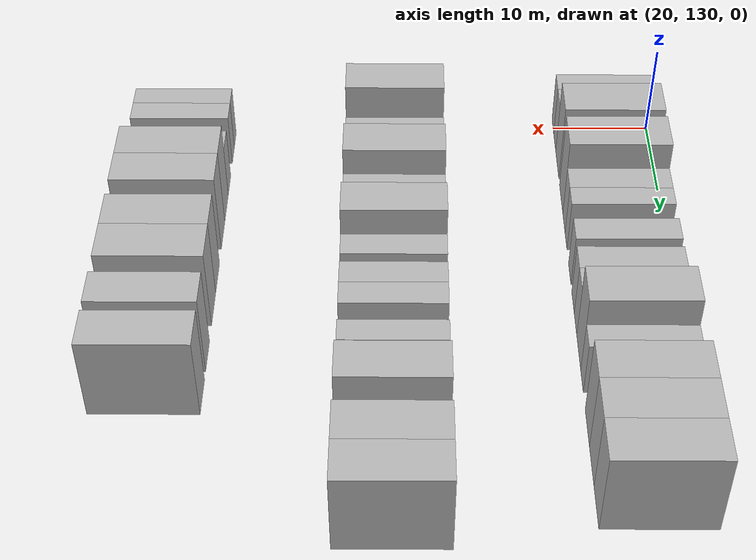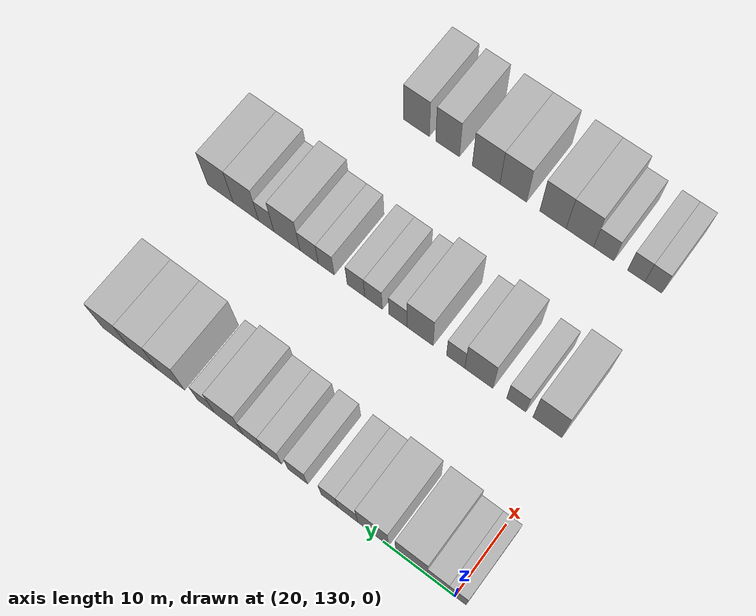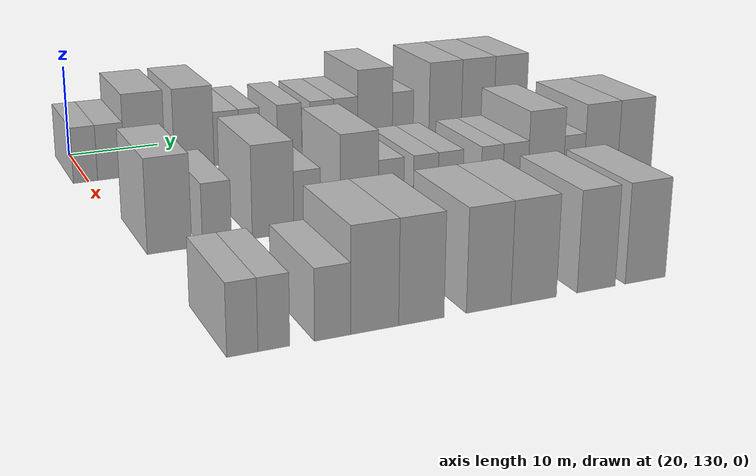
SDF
<sdf version="1.6">
 <world name="default">
  <model name="building_127">
   <static>1</static>
   <pose>25.0000 129.6932 0 0.000000 0.000000 0.000000</pose>
   <link name="link">
    <pose>0 0 3.00 0 0 0</pose>
    <collision name="collision"><geometry><box><size>10.0000 2.5258 6.0000</size></box></geometry></collision>
    <visual name="visual">
     <cast_shadows>0</cast_shadows>
     <geometry><box><size>10.0000 2.5258 6.0000</size></box></geometry>
     <material>
      <script>
       <uri>model://HANNAS_wall/materials/scripts</uri>
       <uri>model://HANNAS_wall/materials/textures</uri>
       <name>vrc/HANNAS_wall</name>
      </script>
     </material>
    </visual>
   </link>
  </model>
  <model name="building_128">
   <static>1</static>
   <pose>25.0000 132.4040 0 0.000000 0.000000 0.000000</pose>
   <link name="link">
    <pose>0 0 3.00 0 0 0</pose>
    <collision name="collision"><geometry><box><size>10.0000 2.8959 6.0000</size></box></geometry></collision>
    <visual name="visual">
     <cast_shadows>0</cast_shadows>
     <geometry><box><size>10.0000 2.8959 6.0000</size></box></geometry>
     <material>
      <script>
       <uri>model://HANNAS_wall/materials/scripts</uri>
       <uri>model://HANNAS_wall/materials/textures</uri>
       <name>vrc/HANNAS_wall</name>
      </script>
     </material>
    </visual>
   </link>
  </model>
  <model name="building_129">
   <static>1</static>
   <pose>25.0000 136.0474 0 0.000000 0.000000 0.000000</pose>
   <link name="link">
    <pose>0 0 4.50 0 0 0</pose>
    <collision name="collision"><geometry><box><size>10.0000 4.3910 9.0000</size></box></geometry></collision>
    <visual name="visual">
     <cast_shadows>0</cast_shadows>
     <geometry><box><size>10.0000 4.3910 9.0000</size></box></geometry>
     <material>
      <script>
       <uri>model://HANNAS_wall/materials/scripts</uri>
       <uri>model://HANNAS_wall/materials/textures</uri>
       <name>vrc/HANNAS_wall</name>
      </script>
     </material>
    </visual>
   </link>
  </model>
  <model name="building_130">
   <static>1</static>
   <pose>25.0000 141.4439 0 0.000000 0.000000 0.000000</pose>
   <link name="link">
    <pose>0 0 4.50 0 0 0</pose>
    <collision name="collision"><geometry><box><size>10.0000 4.4021 9.0000</size></box></geometry></collision>
    <visual name="visual">
     <cast_shadows>0</cast_shadows>
     <geometry><box><size>10.0000 4.4021 9.0000</size></box></geometry>
     <material>
      <script>
       <uri>model://HANNAS_wall/materials/scripts</uri>
       <uri>model://HANNAS_wall/materials/textures</uri>
       <name>vrc/HANNAS_wall</name>
      </script>
     </material>
    </visual>
   </link>
  </model>
  <model name="building_131">
   <static>1</static>
   <pose>25.0000 145.0742 0 0.000000 0.000000 0.000000</pose>
   <link name="link">
    <pose>0 0 3.00 0 0 0</pose>
    <collision name="collision"><geometry><box><size>10.0000 2.8584 6.0000</size></box></geometry></collision>
    <visual name="visual">
     <cast_shadows>0</cast_shadows>
     <geometry><box><size>10.0000 2.8584 6.0000</size></box></geometry>
     <material>
      <script>
       <uri>model://HANNAS_wall/materials/scripts</uri>
       <uri>model://HANNAS_wall/materials/textures</uri>
       <name>vrc/HANNAS_wall</name>
      </script>
     </material>
    </visual>
   </link>
  </model>
  <model name="building_132">
   <static>1</static>
   <pose>25.0000 147.7127 0 0.000000 0.000000 0.000000</pose>
   <link name="link">
    <pose>0 0 3.00 0 0 0</pose>
    <collision name="collision"><geometry><box><size>10.0000 2.4186 6.0000</size></box></geometry></collision>
    <visual name="visual">
     <cast_shadows>0</cast_shadows>
     <geometry><box><size>10.0000 2.4186 6.0000</size></box></geometry>
     <material>
      <script>
       <uri>model://HANNAS_wall/materials/scripts</uri>
       <uri>model://HANNAS_wall/materials/textures</uri>
       <name>vrc/HANNAS_wall</name>
      </script>
     </material>
    </visual>
   </link>
  </model>
  <model name="building_133">
   <static>1</static>
   <pose>25.0000 152.3538 0 0.000000 0.000000 0.000000</pose>
   <link name="link">
    <pose>0 0 3.00 0 0 0</pose>
    <collision name="collision"><geometry><box><size>10.0000 2.8638 6.0000</size></box></geometry></collision>
    <visual name="visual">
     <cast_shadows>0</cast_shadows>
     <geometry><box><size>10.0000 2.8638 6.0000</size></box></geometry>
     <material>
      <script>
       <uri>model://HANNAS_wall/materials/scripts</uri>
       <uri>model://HANNAS_wall/materials/textures</uri>
       <name>vrc/HANNAS_wall</name>
      </script>
     </material>
    </visual>
   </link>
  </model>
  <model name="building_134">
   <static>1</static>
   <pose>25.0000 156.2136 0 0.000000 0.000000 0.000000</pose>
   <link name="link">
    <pose>0 0 3.00 0 0 0</pose>
    <collision name="collision"><geometry><box><size>10.0000 2.8557 6.0000</size></box></geometry></collision>
    <visual name="visual">
     <cast_shadows>0</cast_shadows>
     <geometry><box><size>10.0000 2.8557 6.0000</size></box></geometry>
     <material>
      <script>
       <uri>model://HANNAS_wall/materials/scripts</uri>
       <uri>model://HANNAS_wall/materials/textures</uri>
       <name>vrc/HANNAS_wall</name>
      </script>
     </material>
    </visual>
   </link>
  </model>
  <model name="building_135">
   <static>1</static>
   <pose>25.0000 159.0727 0 0.000000 0.000000 0.000000</pose>
   <link name="link">
    <pose>0 0 3.00 0 0 0</pose>
    <collision name="collision"><geometry><box><size>10.0000 2.8624 6.0000</size></box></geometry></collision>
    <visual name="visual">
     <cast_shadows>0</cast_shadows>
     <geometry><box><size>10.0000 2.8624 6.0000</size></box></geometry>
     <material>
      <script>
       <uri>model://HANNAS_wall/materials/scripts</uri>
       <uri>model://HANNAS_wall/materials/textures</uri>
       <name>vrc/HANNAS_wall</name>
      </script>
     </material>
    </visual>
   </link>
  </model>
  <model name="building_136">
   <static>1</static>
   <pose>25.0000 162.6638 0 0.000000 0.000000 0.000000</pose>
   <link name="link">
    <pose>0 0 4.50 0 0 0</pose>
    <collision name="collision"><geometry><box><size>10.0000 4.3197 9.0000</size></box></geometry></collision>
    <visual name="visual">
     <cast_shadows>0</cast_shadows>
     <geometry><box><size>10.0000 4.3197 9.0000</size></box></geometry>
     <material>
      <script>
       <uri>model://HANNAS_wall/materials/scripts</uri>
       <uri>model://HANNAS_wall/materials/textures</uri>
       <name>vrc/HANNAS_wall</name>
      </script>
     </material>
    </visual>
   </link>
  </model>
  <model name="building_137">
   <static>1</static>
   <pose>25.0000 166.1462 0 0.000000 0.000000 0.000000</pose>
   <link name="link">
    <pose>0 0 3.00 0 0 0</pose>
    <collision name="collision"><geometry><box><size>10.0000 2.6452 6.0000</size></box></geometry></collision>
    <visual name="visual">
     <cast_shadows>0</cast_shadows>
     <geometry><box><size>10.0000 2.6452 6.0000</size></box></geometry>
     <material>
      <script>
       <uri>model://HANNAS_wall/materials/scripts</uri>
       <uri>model://HANNAS_wall/materials/textures</uri>
       <name>vrc/HANNAS_wall</name>
      </script>
     </material>
    </visual>
   </link>
  </model>
  <model name="building_138">
   <static>1</static>
   <pose>25.0000 171.5679 0 0.000000 0.000000 0.000000</pose>
   <link name="link">
    <pose>0 0 4.50 0 0 0</pose>
    <collision name="collision"><geometry><box><size>10.0000 4.1981 9.0000</size></box></geometry></collision>
    <visual name="visual">
     <cast_shadows>0</cast_shadows>
     <geometry><box><size>10.0000 4.1981 9.0000</size></box></geometry>
     <material>
      <script>
       <uri>model://HANNAS_wall/materials/scripts</uri>
       <uri>model://HANNAS_wall/materials/textures</uri>
       <name>vrc/HANNAS_wall</name>
      </script>
     </material>
    </visual>
   </link>
  </model>
  <model name="building_139">
   <static>1</static>
   <pose>25.0000 175.8193 0 0.000000 0.000000 0.000000</pose>
   <link name="link">
    <pose>0 0 4.50 0 0 0</pose>
    <collision name="collision"><geometry><box><size>10.0000 4.3047 9.0000</size></box></geometry></collision>
    <visual name="visual">
     <cast_shadows>0</cast_shadows>
     <geometry><box><size>10.0000 4.3047 9.0000</size></box></geometry>
     <material>
      <script>
       <uri>model://HANNAS_wall/materials/scripts</uri>
       <uri>model://HANNAS_wall/materials/textures</uri>
       <name>vrc/HANNAS_wall</name>
      </script>
     </material>
    </visual>
   </link>
  </model>
  <model name="building_140">
   <static>1</static>
   <pose>25.0000 180.1568 0 0.000000 0.000000 0.000000</pose>
   <link name="link">
    <pose>0 0 4.50 0 0 0</pose>
    <collision name="collision"><geometry><box><size>10.0000 4.3703 9.0000</size></box></geometry></collision>
    <visual name="visual">
     <cast_shadows>0</cast_shadows>
     <geometry><box><size>10.0000 4.3703 9.0000</size></box></geometry>
     <material>
      <script>
       <uri>model://HANNAS_wall/materials/scripts</uri>
       <uri>model://HANNAS_wall/materials/textures</uri>
       <name>vrc/HANNAS_wall</name>
      </script>
     </material>
    </visual>
   </link>
  </model>
  <model name="building_322">
   <static>1</static>
   <pose>47.0000 132.6867 0 0.000000 0.000000 0.000000</pose>
   <link name="link">
    <pose>0 0 4.50 0 0 0</pose>
    <collision name="collision"><geometry><box><size>10.0000 4.1118 9.0000</size></box></geometry></collision>
    <visual name="visual">
     <cast_shadows>0</cast_shadows>
     <geometry><box><size>10.0000 4.1118 9.0000</size></box></geometry>
     <material>
      <script>
       <uri>model://HANNAS_wall/materials/scripts</uri>
       <uri>model://HANNAS_wall/materials/textures</uri>
       <name>vrc/HANNAS_wall</name>
      </script>
     </material>
    </visual>
   </link>
  </model>
  <model name="building_323">
   <static>1</static>
   <pose>47.0000 137.1242 0 0.000000 0.000000 0.000000</pose>
   <link name="link">
    <pose>0 0 3.00 0 0 0</pose>
    <collision name="collision"><geometry><box><size>10.0000 2.7633 6.0000</size></box></geometry></collision>
    <visual name="visual">
     <cast_shadows>0</cast_shadows>
     <geometry><box><size>10.0000 2.7633 6.0000</size></box></geometry>
     <material>
      <script>
       <uri>model://HANNAS_wall/materials/scripts</uri>
       <uri>model://HANNAS_wall/materials/textures</uri>
       <name>vrc/HANNAS_wall</name>
      </script>
     </material>
    </visual>
   </link>
  </model>
  <model name="building_324">
   <static>1</static>
   <pose>47.0000 142.5549 0 0.000000 0.000000 0.000000</pose>
   <link name="link">
    <pose>0 0 4.50 0 0 0</pose>
    <collision name="collision"><geometry><box><size>10.0000 4.0981 9.0000</size></box></geometry></collision>
    <visual name="visual">
     <cast_shadows>0</cast_shadows>
     <geometry><box><size>10.0000 4.0981 9.0000</size></box></geometry>
     <material>
      <script>
       <uri>model://HANNAS_wall/materials/scripts</uri>
       <uri>model://HANNAS_wall/materials/textures</uri>
       <name>vrc/HANNAS_wall</name>
      </script>
     </material>
    </visual>
   </link>
  </model>
  <model name="building_325">
   <static>1</static>
   <pose>47.0000 145.9447 0 0.000000 0.000000 0.000000</pose>
   <link name="link">
    <pose>0 0 3.00 0 0 0</pose>
    <collision name="collision"><geometry><box><size>10.0000 2.6815 6.0000</size></box></geometry></collision>
    <visual name="visual">
     <cast_shadows>0</cast_shadows>
     <geometry><box><size>10.0000 2.6815 6.0000</size></box></geometry>
     <material>
      <script>
       <uri>model://HANNAS_wall/materials/scripts</uri>
       <uri>model://HANNAS_wall/materials/textures</uri>
       <name>vrc/HANNAS_wall</name>
      </script>
     </material>
    </visual>
   </link>
  </model>
  <model name="building_326">
   <static>1</static>
   <pose>47.0000 151.2444 0 0.000000 0.000000 0.000000</pose>
   <link name="link">
    <pose>0 0 4.50 0 0 0</pose>
    <collision name="collision"><geometry><box><size>10.0000 3.9180 9.0000</size></box></geometry></collision>
    <visual name="visual">
     <cast_shadows>0</cast_shadows>
     <geometry><box><size>10.0000 3.9180 9.0000</size></box></geometry>
     <material>
      <script>
       <uri>model://HANNAS_wall/materials/scripts</uri>
       <uri>model://HANNAS_wall/materials/textures</uri>
       <name>vrc/HANNAS_wall</name>
      </script>
     </material>
    </visual>
   </link>
  </model>
  <model name="building_327">
   <static>1</static>
   <pose>47.0000 154.5474 0 0.000000 0.000000 0.000000</pose>
   <link name="link">
    <pose>0 0 3.00 0 0 0</pose>
    <collision name="collision"><geometry><box><size>10.0000 2.6881 6.0000</size></box></geometry></collision>
    <visual name="visual">
     <cast_shadows>0</cast_shadows>
     <geometry><box><size>10.0000 2.6881 6.0000</size></box></geometry>
     <material>
      <script>
       <uri>model://HANNAS_wall/materials/scripts</uri>
       <uri>model://HANNAS_wall/materials/textures</uri>
       <name>vrc/HANNAS_wall</name>
      </script>
     </material>
    </visual>
   </link>
  </model>
  <model name="building_328">
   <static>1</static>
   <pose>47.0000 158.2276 0 0.000000 0.000000 0.000000</pose>
   <link name="link">
    <pose>0 0 3.00 0 0 0</pose>
    <collision name="collision"><geometry><box><size>10.0000 2.6722 6.0000</size></box></geometry></collision>
    <visual name="visual">
     <cast_shadows>0</cast_shadows>
     <geometry><box><size>10.0000 2.6722 6.0000</size></box></geometry>
     <material>
      <script>
       <uri>model://HANNAS_wall/materials/scripts</uri>
       <uri>model://HANNAS_wall/materials/textures</uri>
       <name>vrc/HANNAS_wall</name>
      </script>
     </material>
    </visual>
   </link>
  </model>
  <model name="building_329">
   <static>1</static>
   <pose>47.0000 160.9131 0 0.000000 0.000000 0.000000</pose>
   <link name="link">
    <pose>0 0 3.00 0 0 0</pose>
    <collision name="collision"><geometry><box><size>10.0000 2.6987 6.0000</size></box></geometry></collision>
    <visual name="visual">
     <cast_shadows>0</cast_shadows>
     <geometry><box><size>10.0000 2.6987 6.0000</size></box></geometry>
     <material>
      <script>
       <uri>model://HANNAS_wall/materials/scripts</uri>
       <uri>model://HANNAS_wall/materials/textures</uri>
       <name>vrc/HANNAS_wall</name>
      </script>
     </material>
    </visual>
   </link>
  </model>
  <model name="building_330">
   <static>1</static>
   <pose>47.0000 165.4942 0 0.000000 0.000000 0.000000</pose>
   <link name="link">
    <pose>0 0 3.00 0 0 0</pose>
    <collision name="collision"><geometry><box><size>10.0000 2.4636 6.0000</size></box></geometry></collision>
    <visual name="visual">
     <cast_shadows>0</cast_shadows>
     <geometry><box><size>10.0000 2.4636 6.0000</size></box></geometry>
     <material>
      <script>
       <uri>model://HANNAS_wall/materials/scripts</uri>
       <uri>model://HANNAS_wall/materials/textures</uri>
       <name>vrc/HANNAS_wall</name>
      </script>
     </material>
    </visual>
   </link>
  </model>
  <model name="building_331">
   <static>1</static>
   <pose>47.0000 168.1573 0 0.000000 0.000000 0.000000</pose>
   <link name="link">
    <pose>0 0 3.00 0 0 0</pose>
    <collision name="collision"><geometry><box><size>10.0000 2.8625 6.0000</size></box></geometry></collision>
    <visual name="visual">
     <cast_shadows>0</cast_shadows>
     <geometry><box><size>10.0000 2.8625 6.0000</size></box></geometry>
     <material>
      <script>
       <uri>model://HANNAS_wall/materials/scripts</uri>
       <uri>model://HANNAS_wall/materials/textures</uri>
       <name>vrc/HANNAS_wall</name>
      </script>
     </material>
    </visual>
   </link>
  </model>
  <model name="building_332">
   <static>1</static>
   <pose>47.0000 171.6560 0 0.000000 0.000000 0.000000</pose>
   <link name="link">
    <pose>0 0 4.50 0 0 0</pose>
    <collision name="collision"><geometry><box><size>10.0000 4.1349 9.0000</size></box></geometry></collision>
    <visual name="visual">
     <cast_shadows>0</cast_shadows>
     <geometry><box><size>10.0000 4.1349 9.0000</size></box></geometry>
     <material>
      <script>
       <uri>model://HANNAS_wall/materials/scripts</uri>
       <uri>model://HANNAS_wall/materials/textures</uri>
       <name>vrc/HANNAS_wall</name>
      </script>
     </material>
    </visual>
   </link>
  </model>
  <model name="building_333">
   <static>1</static>
   <pose>47.0000 174.9479 0 0.000000 0.000000 0.000000</pose>
   <link name="link">
    <pose>0 0 3.00 0 0 0</pose>
    <collision name="collision"><geometry><box><size>10.0000 2.4487 6.0000</size></box></geometry></collision>
    <visual name="visual">
     <cast_shadows>0</cast_shadows>
     <geometry><box><size>10.0000 2.4487 6.0000</size></box></geometry>
     <material>
      <script>
       <uri>model://HANNAS_wall/materials/scripts</uri>
       <uri>model://HANNAS_wall/materials/textures</uri>
       <name>vrc/HANNAS_wall</name>
      </script>
     </material>
    </visual>
   </link>
  </model>
  <model name="building_334">
   <static>1</static>
   <pose>47.0000 178.2045 0 0.000000 0.000000 0.000000</pose>
   <link name="link">
    <pose>0 0 4.50 0 0 0</pose>
    <collision name="collision"><geometry><box><size>10.0000 4.0645 9.0000</size></box></geometry></collision>
    <visual name="visual">
     <cast_shadows>0</cast_shadows>
     <geometry><box><size>10.0000 4.0645 9.0000</size></box></geometry>
     <material>
      <script>
       <uri>model://HANNAS_wall/materials/scripts</uri>
       <uri>model://HANNAS_wall/materials/textures</uri>
       <name>vrc/HANNAS_wall</name>
      </script>
     </material>
    </visual>
   </link>
  </model>
  <model name="building_335">
   <static>1</static>
   <pose>47.0000 182.3185 0 0.000000 0.000000 0.000000</pose>
   <link name="link">
    <pose>0 0 4.50 0 0 0</pose>
    <collision name="collision"><geometry><box><size>10.0000 4.1635 9.0000</size></box></geometry></collision>
    <visual name="visual">
     <cast_shadows>0</cast_shadows>
     <geometry><box><size>10.0000 4.1635 9.0000</size></box></geometry>
     <material>
      <script>
       <uri>model://HANNAS_wall/materials/scripts</uri>
       <uri>model://HANNAS_wall/materials/textures</uri>
       <name>vrc/HANNAS_wall</name>
      </script>
     </material>
    </visual>
   </link>
  </model>
  <model name="building_506">
   <static>1</static>
   <pose>69.0000 132.2419 0 0.000000 0.000000 0.000000</pose>
   <link name="link">
    <pose>0 0 3.00 0 0 0</pose>
    <collision name="collision"><geometry><box><size>10.0000 2.4415 6.0000</size></box></geometry></collision>
    <visual name="visual">
     <cast_shadows>0</cast_shadows>
     <geometry><box><size>10.0000 2.4415 6.0000</size></box></geometry>
     <material>
      <script>
       <uri>model://HANNAS_wall/materials/scripts</uri>
       <uri>model://HANNAS_wall/materials/textures</uri>
       <name>vrc/HANNAS_wall</name>
      </script>
     </material>
    </visual>
   </link>
  </model>
  <model name="building_507">
   <static>1</static>
   <pose>69.0000 134.7359 0 0.000000 0.000000 0.000000</pose>
   <link name="link">
    <pose>0 0 3.00 0 0 0</pose>
    <collision name="collision"><geometry><box><size>10.0000 2.5465 6.0000</size></box></geometry></collision>
    <visual name="visual">
     <cast_shadows>0</cast_shadows>
     <geometry><box><size>10.0000 2.5465 6.0000</size></box></geometry>
     <material>
      <script>
       <uri>model://HANNAS_wall/materials/scripts</uri>
       <uri>model://HANNAS_wall/materials/textures</uri>
       <name>vrc/HANNAS_wall</name>
      </script>
     </material>
    </visual>
   </link>
  </model>
  <model name="building_508">
   <static>1</static>
   <pose>69.0000 139.5070 0 0.000000 0.000000 0.000000</pose>
   <link name="link">
    <pose>0 0 3.00 0 0 0</pose>
    <collision name="collision"><geometry><box><size>10.0000 2.9959 6.0000</size></box></geometry></collision>
    <visual name="visual">
     <cast_shadows>0</cast_shadows>
     <geometry><box><size>10.0000 2.9959 6.0000</size></box></geometry>
     <material>
      <script>
       <uri>model://HANNAS_wall/materials/scripts</uri>
       <uri>model://HANNAS_wall/materials/textures</uri>
       <name>vrc/HANNAS_wall</name>
      </script>
     </material>
    </visual>
   </link>
  </model>
  <model name="building_509">
   <static>1</static>
   <pose>69.0000 143.0494 0 0.000000 0.000000 0.000000</pose>
   <link name="link">
    <pose>0 0 4.50 0 0 0</pose>
    <collision name="collision"><geometry><box><size>10.0000 4.0888 9.0000</size></box></geometry></collision>
    <visual name="visual">
     <cast_shadows>0</cast_shadows>
     <geometry><box><size>10.0000 4.0888 9.0000</size></box></geometry>
     <material>
      <script>
       <uri>model://HANNAS_wall/materials/scripts</uri>
       <uri>model://HANNAS_wall/materials/textures</uri>
       <name>vrc/HANNAS_wall</name>
      </script>
     </material>
    </visual>
   </link>
  </model>
  <model name="building_510">
   <static>1</static>
   <pose>69.0000 147.0775 0 0.000000 0.000000 0.000000</pose>
   <link name="link">
    <pose>0 0 4.50 0 0 0</pose>
    <collision name="collision"><geometry><box><size>10.0000 3.9674 9.0000</size></box></geometry></collision>
    <visual name="visual">
     <cast_shadows>0</cast_shadows>
     <geometry><box><size>10.0000 3.9674 9.0000</size></box></geometry>
     <material>
      <script>
       <uri>model://HANNAS_wall/materials/scripts</uri>
       <uri>model://HANNAS_wall/materials/textures</uri>
       <name>vrc/HANNAS_wall</name>
      </script>
     </material>
    </visual>
   </link>
  </model>
  <model name="building_511">
   <static>1</static>
   <pose>69.0000 153.0986 0 0.000000 0.000000 0.000000</pose>
   <link name="link">
    <pose>0 0 4.50 0 0 0</pose>
    <collision name="collision"><geometry><box><size>10.0000 4.0748 9.0000</size></box></geometry></collision>
    <visual name="visual">
     <cast_shadows>0</cast_shadows>
     <geometry><box><size>10.0000 4.0748 9.0000</size></box></geometry>
     <material>
      <script>
       <uri>model://HANNAS_wall/materials/scripts</uri>
       <uri>model://HANNAS_wall/materials/textures</uri>
       <name>vrc/HANNAS_wall</name>
      </script>
     </material>
    </visual>
   </link>
  </model>
  <model name="building_512">
   <static>1</static>
   <pose>69.0000 157.2776 0 0.000000 0.000000 0.000000</pose>
   <link name="link">
    <pose>0 0 4.50 0 0 0</pose>
    <collision name="collision"><geometry><box><size>10.0000 4.2832 9.0000</size></box></geometry></collision>
    <visual name="visual">
     <cast_shadows>0</cast_shadows>
     <geometry><box><size>10.0000 4.2832 9.0000</size></box></geometry>
     <material>
      <script>
       <uri>model://HANNAS_wall/materials/scripts</uri>
       <uri>model://HANNAS_wall/materials/textures</uri>
       <name>vrc/HANNAS_wall</name>
      </script>
     </material>
    </visual>
   </link>
  </model>
  <model name="building_513">
   <static>1</static>
   <pose>69.0000 163.2840 0 0.000000 0.000000 0.000000</pose>
   <link name="link">
    <pose>0 0 4.50 0 0 0</pose>
    <collision name="collision"><geometry><box><size>10.0000 3.7297 9.0000</size></box></geometry></collision>
    <visual name="visual">
     <cast_shadows>0</cast_shadows>
     <geometry><box><size>10.0000 3.7297 9.0000</size></box></geometry>
     <material>
      <script>
       <uri>model://HANNAS_wall/materials/scripts</uri>
       <uri>model://HANNAS_wall/materials/textures</uri>
       <name>vrc/HANNAS_wall</name>
      </script>
     </material>
    </visual>
   </link>
  </model>
  <model name="building_514">
   <static>1</static>
   <pose>69.0000 168.1828 0 0.000000 0.000000 0.000000</pose>
   <link name="link">
    <pose>0 0 4.50 0 0 0</pose>
    <collision name="collision"><geometry><box><size>10.0000 4.0678 9.0000</size></box></geometry></collision>
    <visual name="visual">
     <cast_shadows>0</cast_shadows>
     <geometry><box><size>10.0000 4.0678 9.0000</size></box></geometry>
     <material>
      <script>
       <uri>model://HANNAS_wall/materials/scripts</uri>
       <uri>model://HANNAS_wall/materials/textures</uri>
       <name>vrc/HANNAS_wall</name>
      </script>
     </material>
    </visual>
   </link>
  </model>
 </world>
</sdf>
